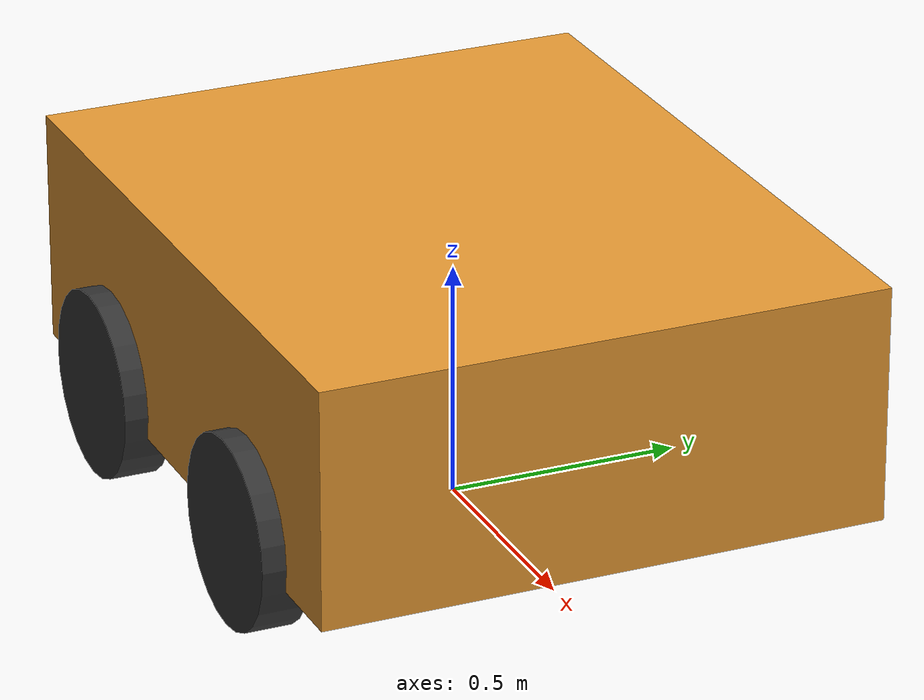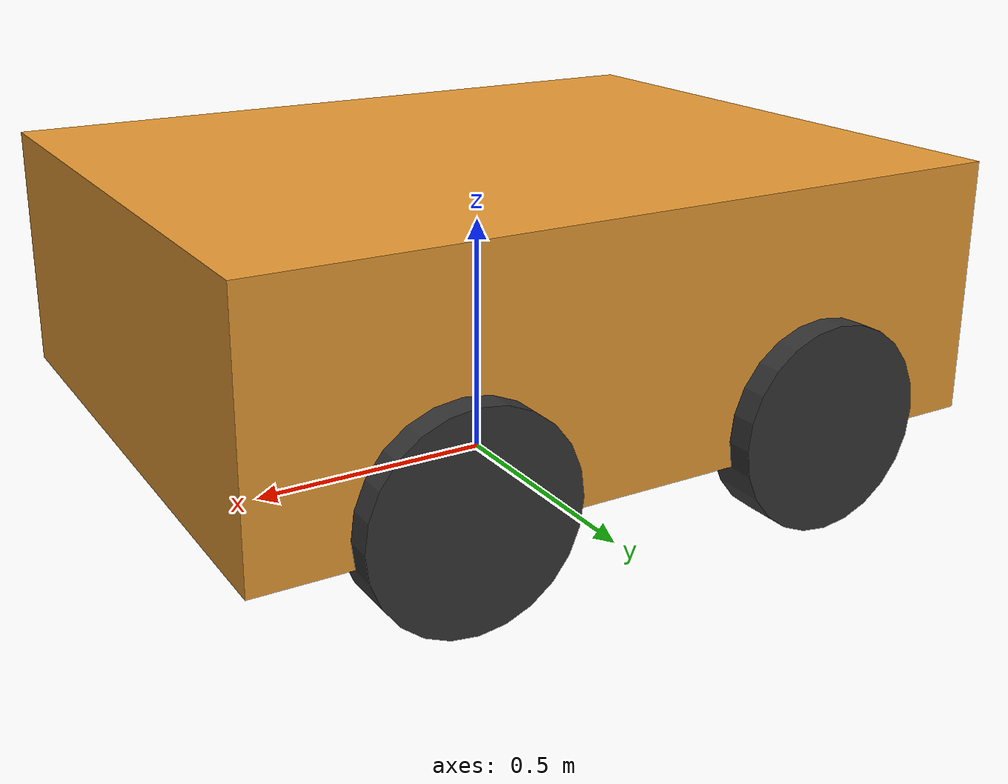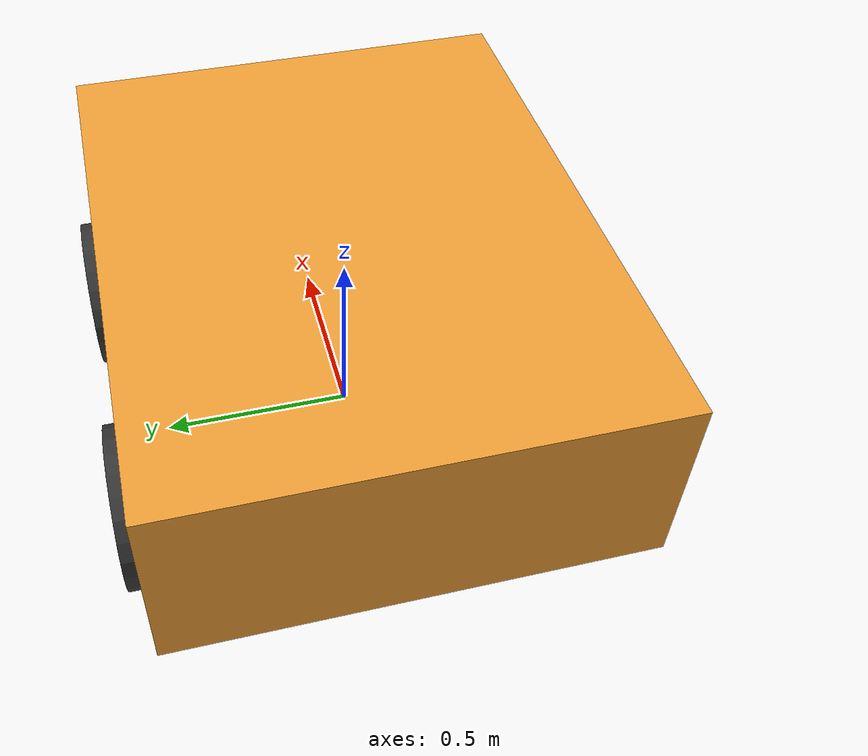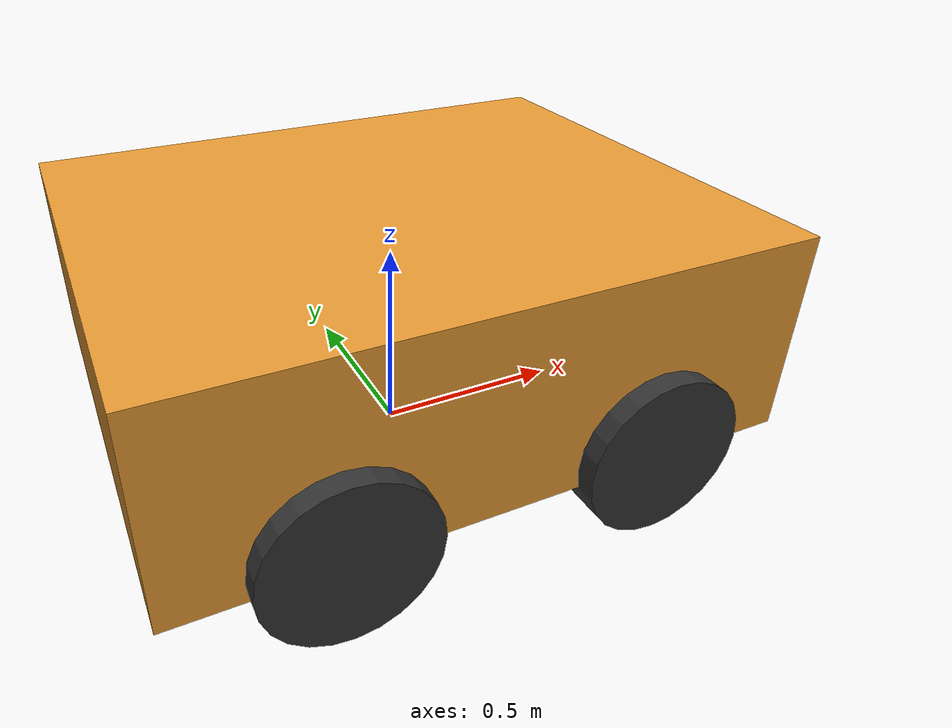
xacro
<!-- 底盘实现 -->

<robot xmlns:xacro="http://www.ros.org/wiki/xacro">
    <!-- 包含计算 惯性矩阵 的 xacro -->
    <xacro:include filename="common_inertial.xacro"/>

    <!-- 声明变量 -->
    <xacro:property name = "PI" value = "3.1415927"/>
    <xacro:property name = "car_length" value = "1.5"/>
    <xacro:property name = "car_width" value = "1.2"/>
    <xacro:property name = "car_height" value = "0.5"/>
    <xacro:property name = "car_base_weight" value = "30.0"/>
    <xacro:property name = "wheel_radius" value = "0.2"/>
    <xacro:property name = "wheel_width" value = "0.1"/>
    <xacro:property name = "wheel_weight" value = "20.0"/>
    <xacro:property name = "car_to_floor_distance" value = "0.15"/>
    <!-- 轮胎距离底盘的偏移量 -->
    <xacro:property name = "wheel_joint_x" value = "${car_length / 4}"/>
    <xacro:property name = "wheel_joint_y" value = "${car_width / 2}"/>
    <xacro:property name = "wheel_joint_z" value = "${-(car_to_floor_distance + car_height / 2 - wheel_radius)}"/>
    <!-- 颜色设为全局变量 -->
    <material name="yellow">
        <color rgba="0.9 0.6 0.2 1.0"/>
    </material>
    <material name="black">
        <color rgba="0.2 0.2 0.2 1.0"/>
    </material>

    <!-- 设置 base_footprint -->
     <link name="base_footprint">
        <visual>
            <geometry>
                <sphere radius="0.001"/>
            </geometry>
        </visual>
    </link>
    <!-- 设置 base_link -->
    <link name="base_link">
        <visual>
            <geometry>
                <box size="${car_length} ${car_width} ${car_height}"/>
            </geometry>
            <material name="yellow"/>
        </visual>
        <collision>
            <geometry>
                <box size="${car_length + 0.01} ${car_width + 0.01} ${car_height + 0.01}"/>
            </geometry>
        </collision>
        <!-- 添加质量和惯性 -->
        <xacro:box_inertia m = "${car_base_weight}" l = "${car_length}" w = "${car_width}" h = "${car_height}"
                           xyz = "0 0 0" rpy = "0 0 0" />
    </link>

    <!-- 使用 joint 关联 1和2 -->
    <joint name="base_link_to_base_footprint" type="fixed">
        <parent link="base_footprint"/>
        <child link="base_link"/>
        <!-- 底盘偏移量，离地距离 -->
        <origin xyz="0.0 0.0 ${car_to_floor_distance + (car_height + 0.001)/2}"/>
    </joint>

    <!-- 设置 gazebo 标签 -->
    <gazebo reference = "base_link">
        <material>Gazebo/Yellow</material>
        <gravity>true</gravity>
    </gazebo>

    <!-- 定义车轮相关的宏 -->
    <!-- 宏（函数）创建规则：封装可被复用的代码，要变的数据以参数的方式传入 -->
    <xacro:macro name = "wheel_and_joint" params = "link_name left_flag front_flag">
        <!-- 添加一个车轮 -->
        <link name="${link_name}">
            <visual>
                <geometry>
                    <cylinder radius="${wheel_radius}" length="${wheel_width}"/>
                </geometry>
                <material name="black"/>
                <!-- 车轮翻滚90度 -->
                <origin rpy="${PI / 2} 0.0 0.0"/>
            </visual>
            <collision>
                <geometry>
                    <cylinder radius="${wheel_radius + 0.01}" length="${wheel_width + 0.01}"/>
                </geometry>
                <!-- 车轮翻滚90度 -->
                <origin rpy="${PI / 2} 0.0 0.0"/>
            </collision>
            <!-- 添加质量和惯性 -->
            <xacro:cylinder_inertia m = "${wheel_weight}" r = "${wheel_radius}" h = "${wheel_width}"
                                    xyz = "0 0 0" rpy = "${PI / 2} 0.0 0.0" />
        </link>

        <!-- 将车轮与 base_link 关联 -->
        <joint name="${link_name}_to_base_link" type="continuous">
            <parent link="base_link"/>
            <child link="${link_name}"/>
            <!-- 车轮相对于底盘的位置 -->
            <origin xyz="${wheel_joint_x * front_flag} ${wheel_joint_y * left_flag} ${wheel_joint_z}"/>
            <!-- 车轮旋转 -->
            <axis xyz="0 1 0"/>
        </joint>

        <!-- 设置 gazebo 标签 -->
        <gazebo reference = "${link_name}">
            <material>Gazebo/Grey</material>
            <!-- 摩擦系数，值越小阻力越小 -->
            <mu1 value = "20.0"/>
            <mu2 value = "20.0"/>
            <kp value="1000000000.0" />
            <kd value="1.0" />

            <!-- 增大地面摩擦力，避免打滑 -->
            <friction>5.0</friction>
            <!-- 降低滚动摩擦 -->
            <rolling_friction>0.01</rolling_friction>
            <!-- 适度阻尼，避免车轮抖动 -->
            <damping>0.5</damping>
        </gazebo>
    </xacro:macro>

    <!-- 调用宏，生成多个车轮，并与 base_link 关联 -->
    <xacro:wheel_and_joint link_name = "left_back" left_flag = "1" front_flag = "-1"/>
    <xacro:wheel_and_joint link_name = "left_front" left_flag = "1" front_flag = "1"/>
    <xacro:wheel_and_joint link_name = "right_back" left_flag = "-1" front_flag = "-1"/>
    <xacro:wheel_and_joint link_name = "right_front" left_flag = "-1" front_flag = "1"/>
</robot>

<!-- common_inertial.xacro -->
<!-- 惯性矩阵 -->

<robot xmlns:xacro="http://www.ros.org/wiki/xacro">

    <!-- 立方体惯性矩阵 -->
    <xacro:macro name="box_inertia" params="m l w h xyz rpy">
        <inertial>
            <!-- 重心偏移：一般与 visual 里面的 origin 参数保持一致 -->
            <origin xyz="${xyz}" rpy="${rpy}"/>
            <!-- 质量 -->
            <mass value="${m}" />
            <!-- 惯性矩阵 -->
            <inertia ixx="${(m/12) * (h*h + l*l)}" ixy="0.0" ixz="0.0"
                     iyy="${(m/12) * (w*w + l*l)}" iyz="0.0"
                     izz="${(m/12) * (w*w + h*h)}" />
        </inertial>
    </xacro:macro>

    <!-- 圆柱体惯性矩阵 -->
    <xacro:macro name="cylinder_inertia" params="m r h xyz rpy">
        <inertial>
            <!-- 重心偏移：一般与 visual 里面的 origin 参数保持一致 -->
            <origin xyz="${xyz}" rpy="${rpy}"/>
            <!-- 质量 -->
            <mass value="${m}" />
            <!-- 惯性矩阵 -->
            <inertia ixx="${(m/12) * (3*r*r + h*h)}" ixy="0" ixz="0"
                     iyy="${(m/12) * (3*r*r + h*h)}" iyz="0"
                     izz="${(m/2) * (r*r)}" />
        </inertial>
    </xacro:macro>

    <!-- 球体惯性矩阵 -->
    <xacro:macro name="sphere_inertia" params="m r xyz rpy">
        <inertial>
            <!-- 重心偏移：一般与 visual 里面的 origin 参数保持一致 -->
            <origin xyz="${xyz}" rpy="${rpy}"/>
            <!-- 质量 -->
            <mass value="${m}" />
            <!-- 惯性矩阵 -->
            <inertia ixx="${(2/5) * m * (r*r)}" ixy="0.0" ixz="0.0"
                     iyy="${(2/5) * m * (r*r)}" iyz="0.0"
                     izz="${(2/5) * m * (r*r)}" />
        </inertial>
    </xacro:macro>

</robot>
